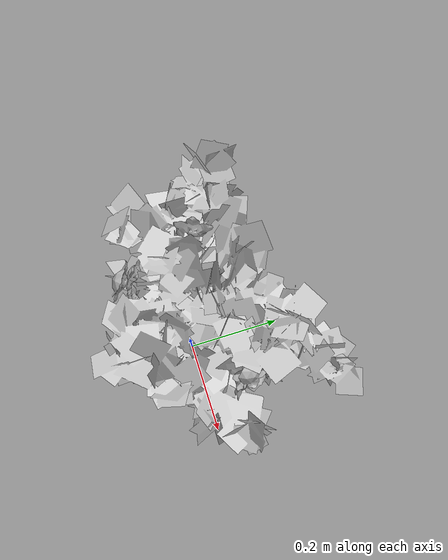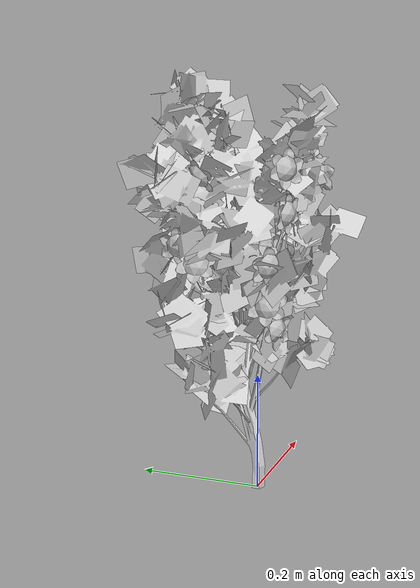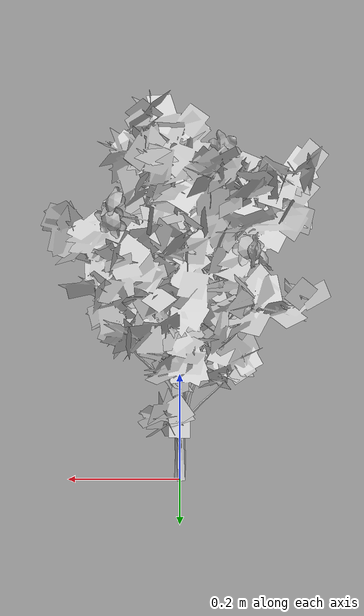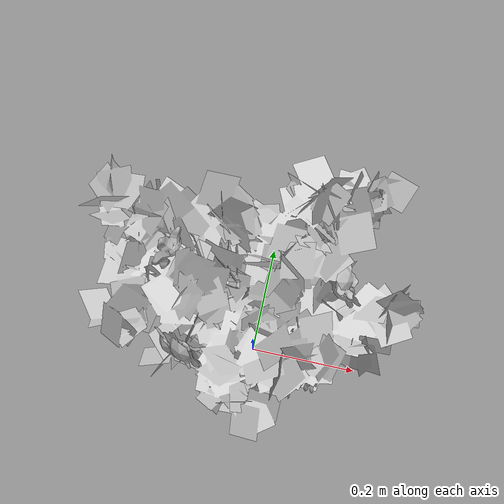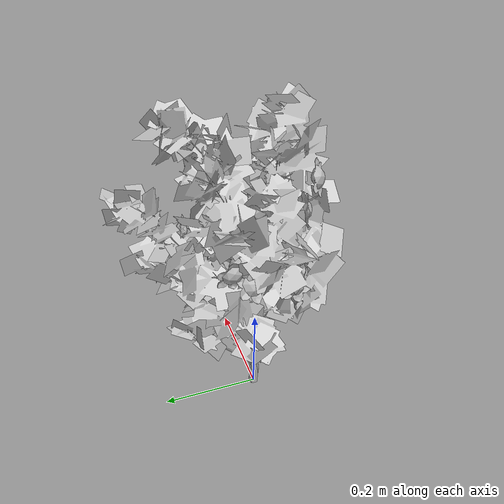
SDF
<?xml version="1.0" ?>
<sdf version="1.6">
  <model name="tree-flowers">
    <!--Skew-Seed:3806915885-->
    <static>true</static>
    <link name="link"/>
    <include>
      <uri>model://tree-mesh</uri>
      <pose>0 0 0 0 0 0</pose>
    </include>
    <joint name="tree_joint" type="fixed">
      <child>tree-mesh::link</child>
      <parent>link</parent>
    </joint>
    <include>
      <name>bramble_0</name>
      <uri>model://bramble</uri>
      <pose> -0.13081192979807338 0.05954969082877823 0.4320761891072836 -3.4240711920758766 2.296564731498518 0.0</pose>
    </include>
    <joint name="flower_joint_0" type="fixed">
      <child>bramble_0::flower_link</child>
      <parent>link</parent>
    </joint>
    <include>
      <name>bramble_1</name>
      <uri>model://bramble</uri>
      <pose> 0.05008669520535211 -0.04679021505259783 0.3841742725910564 0.6057846388505678 1.2633410643251408 0.0</pose>
    </include>
    <joint name="flower_joint_1" type="fixed">
      <child>bramble_1::flower_link</child>
      <parent>link</parent>
    </joint>
    <include>
      <name>bramble_2</name>
      <uri>model://bramble</uri>
      <pose> -0.11838595259659739 0.05331856072196458 0.5839893479813516 -2.7335345315730137 1.177885649541233 0.0</pose>
    </include>
    <joint name="flower_joint_2" type="fixed">
      <child>bramble_2::flower_link</child>
      <parent>link</parent>
    </joint>
    <include>
      <name>bramble_3</name>
      <uri>model://bramble</uri>
      <pose> -0.11846382898795246 0.0905502120164119 0.4603648837326627 -3.2506751619945096 1.4550146105935222 0.0</pose>
    </include>
    <joint name="flower_joint_3" type="fixed">
      <child>bramble_3::flower_link</child>
      <parent>link</parent>
    </joint>
    <include>
      <name>bramble_4</name>
      <uri>model://bramble</uri>
      <pose> 0.09300376027856086 -0.05406536330354786 0.4266294547997219 -0.10604469878462808 1.834307414625713 0.0</pose>
    </include>
    <joint name="flower_joint_4" type="fixed">
      <child>bramble_4::flower_link</child>
      <parent>link</parent>
    </joint>
    <include>
      <name>bramble_5</name>
      <uri>model://bramble</uri>
      <pose> -0.07544991105547089 -0.06856945772265785 0.5924187353756589 -4.08089288101275 2.048038504959311 0.0</pose>
    </include>
    <joint name="flower_joint_5" type="fixed">
      <child>bramble_5::flower_link</child>
      <parent>link</parent>
    </joint>
    <include>
      <name>bramble_6</name>
      <uri>model://bramble</uri>
      <pose> 0.11320446805156423 0.055936639187025794 0.5068375957469964 -0.9845686396345824 1.8386472576103468 0.0</pose>
    </include>
    <joint name="flower_joint_6" type="fixed">
      <child>bramble_6::flower_link</child>
      <parent>link</parent>
    </joint>
    <include>
      <name>bramble_7</name>
      <uri>model://bramble</uri>
      <pose> -0.11089390271267702 0.07005005986163544 0.45851382037464594 -2.2648973915196624 2.0382843898893785 0.0</pose>
    </include>
    <joint name="flower_joint_7" type="fixed">
      <child>bramble_7::flower_link</child>
      <parent>link</parent>
    </joint>
    <include>
      <name>bramble_8</name>
      <uri>model://bramble</uri>
      <pose> -0.10948341433914174 -0.05228888822823112 0.4393453826555645 -4.032788583424783 1.5644682593388923 0.0</pose>
    </include>
    <joint name="flower_joint_8" type="fixed">
      <child>bramble_8::flower_link</child>
      <parent>link</parent>
    </joint>
    <include>
      <name>bramble_9</name>
      <uri>model://bramble</uri>
      <pose> 0.10600272052941437 0.07357882897711546 0.5375735820371318 -0.31251315173255023 0.819218583253455 0.0</pose>
    </include>
    <joint name="flower_joint_9" type="fixed">
      <child>bramble_9::flower_link</child>
      <parent>link</parent>
    </joint>
    <include>
      <name>bramble_10</name>
      <uri>model://bramble</uri>
      <pose> -0.07114353275019196 -0.043810165787084764 0.42515611959619004 -3.134778231155053 1.4357491547297916 0.0</pose>
    </include>
    <joint name="flower_joint_10" type="fixed">
      <child>bramble_10::flower_link</child>
      <parent>link</parent>
    </joint>
    <include>
      <name>bramble_11</name>
      <uri>model://bramble</uri>
      <pose> 0.09384108306491659 0.1143462153843645 0.3921577370307935 -1.247467661518029 1.3887271227838336 0.0</pose>
    </include>
    <joint name="flower_joint_11" type="fixed">
      <child>bramble_11::flower_link</child>
      <parent>link</parent>
    </joint>
    <include>
      <name>bramble_12</name>
      <uri>model://bramble</uri>
      <pose> -0.05336086757002462 -0.06097075439608519 0.5094171881281044 -4.5171965329241415 1.668582164433115 0.0</pose>
    </include>
    <joint name="flower_joint_12" type="fixed">
      <child>bramble_12::flower_link</child>
      <parent>link</parent>
    </joint>
    <include>
      <name>bramble_13</name>
      <uri>model://bramble</uri>
      <pose> -0.10765899022967594 0.07973233049998903 0.35653495814063907 -2.1355064487574715 1.3071844664966892 0.0</pose>
    </include>
    <joint name="flower_joint_13" type="fixed">
      <child>bramble_13::flower_link</child>
      <parent>link</parent>
    </joint>
    <include>
      <name>bramble_14</name>
      <uri>model://bramble</uri>
      <pose> 0.0705181390479983 -0.07228208689292509 0.5337672959768014 0.2503647204393744 1.6343604815516741 0.0</pose>
    </include>
    <joint name="flower_joint_14" type="fixed">
      <child>bramble_14::flower_link</child>
      <parent>link</parent>
    </joint>
    <include>
      <name>bramble_15</name>
      <uri>model://bramble</uri>
      <pose> -0.07955318011283287 -0.04487625443744762 0.3561216673010357 -3.308569992242921 2.091072487652546 0.0</pose>
    </include>
    <joint name="flower_joint_15" type="fixed">
      <child>bramble_15::flower_link</child>
      <parent>link</parent>
    </joint>
    <include>
      <name>bramble_16</name>
      <uri>model://bramble</uri>
      <pose> -0.06351858702573991 -0.047870977461125 0.31184449797416786 -4.404744599260184 1.942265603820996 0.0</pose>
    </include>
    <joint name="flower_joint_16" type="fixed">
      <child>bramble_16::flower_link</child>
      <parent>link</parent>
    </joint>
  </model>
</sdf>

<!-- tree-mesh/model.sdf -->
<sdf version="1.6">
  <model name="tree-mesh">
    <static>true</static>
    <link name="link">

      <collision name="collision">
        <geometry>
          <mesh>
            <uri>model://tree-mesh/meshes/new_tree.dae</uri>
            <scale>0.0625 0.0625 0.0625</scale>
          </mesh>
        </geometry>
      </collision>

      <!-- simplified collision for sake of speed since leaves shouldn't be blocking anyway -->

      <visual name="leaves">
        <geometry>
          <mesh>
            <uri>model://tree-mesh/meshes/leaves.dae</uri>
            <scale>0.0325 0.0325 0.0325</scale>
          </mesh>
        </geometry>
        <material>
          <script>
            <uri>model://tree-mesh/materials/scripts/</uri>
            <uri>model://tree-mesh/materials/textures/</uri>
            <name>NewTree/Branch</name>
          </script>
        </material>
      </visual>
      <visual name="bark">
        <geometry>
          <mesh>
            <uri>model://tree-mesh/meshes/bark.dae</uri>
            <scale>0.0325 0.0325 0.0325</scale>
          </mesh>
        </geometry>
        <material>
          <script>
            <uri>model://tree-mesh/materials/scripts/</uri>
            <uri>model://tree-mesh/materials/textures/</uri>
            <name>NewTree/Bark</name>
          </script>
        </material>
      </visual>
    </link>
  </model>
</sdf>

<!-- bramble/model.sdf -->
<sdf version="1.6">
  <model name="bramble-flower">
    <static>true</static>
    <link name="flower_link">
      <collision name="body_collision">
        <geometry>
          <mesh>
            <uri>model://bramble/meshes/bramble.dae</uri>
            <scale>0.4 0.4 0.4</scale>
          </mesh>
        </geometry>
      </collision>
      <visual name="petals">
        <geometry>
          <mesh>
            <uri>model://bramble/meshes/bramble.dae</uri>
            <scale>0.4 0.4 0.4</scale>
            <submesh>
              <name>petal</name>
            </submesh>
          </mesh>
        </geometry>
        <material>
          <script>
            <uri>model://bramble/materials/scripts/</uri>
            <uri>model://bramble/materials/textures/</uri>
            <name>Bramble/Petal</name>
          </script>
        </material>
      </visual>
      <visual name="carpel">
        <geometry>
          <mesh>
            <uri>model://bramble/meshes/bramble.dae</uri>
            <scale>0.4 0.4 0.4</scale>
            <submesh>
              <name>carpel</name>
            </submesh>
          </mesh>
        </geometry>
        <material>
          <script>
            <uri>model://bramble/materials/scripts/</uri>
            <uri>model://bramble/materials/textures/</uri>
            <name>Bramble/Carpel</name>
          </script>
        </material>
      </visual>
      <visual name="stamen">
        <geometry>
          <mesh>
            <uri>model://bramble/meshes/bramble.dae</uri>
            <scale>0.4 0.4 0.4</scale>
            <submesh>
              <name>stamen</name>
            </submesh>
          </mesh>
        </geometry>
        <material>
          <script>
            <uri>model://bramble/materials/scripts/</uri>
            <uri>model://bramble/materials/textures/</uri>
            <name>Bramble/Stamen</name>
          </script>
        </material>
      </visual>
    </link>
  </model>
</sdf>
